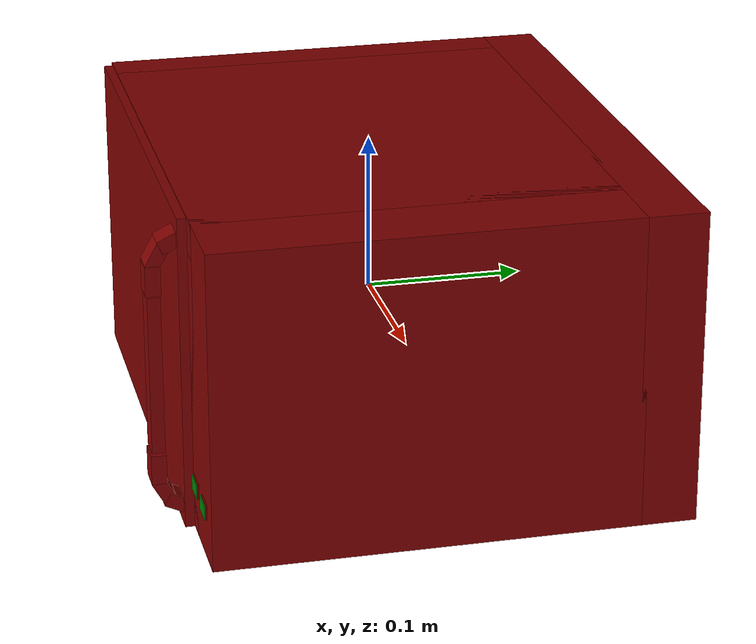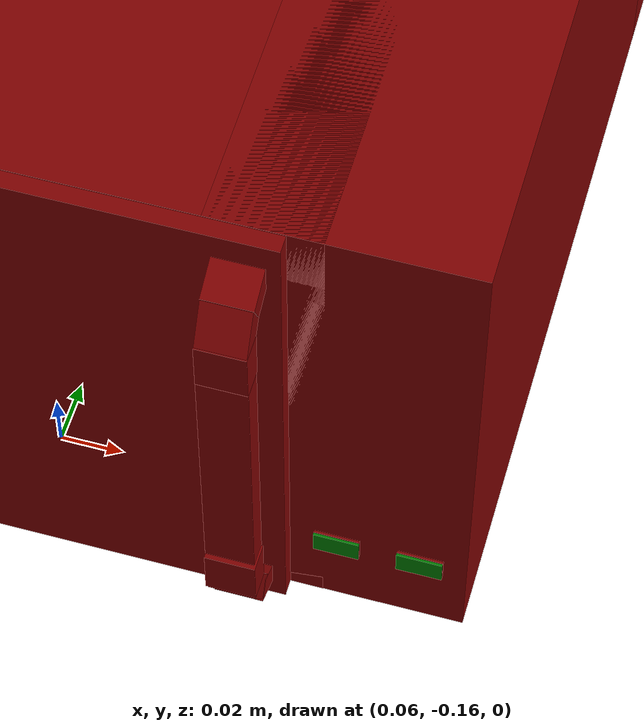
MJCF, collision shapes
<mujoco model="model">
  <compiler angle="radian"/>
  <asset>
    <mesh file="visuals/door.obj" name="door_vis"/>
    <mesh file="visuals/door_Clear.obj" name="door_Clear_vis"/>
    <mesh file="visuals/Body001.obj" name="Body001_vis"/>
    <mesh file="visuals/Button001.obj" name="Button001_vis"/>
    <mesh file="visuals/Button002.obj" name="Button002_vis"/>
    <mesh file="visuals/Disc001.obj" name="Disc001_vis"/>
    <texture file="visuals/T_BC001.png" name="Body001_material" type="2d"/>
    <material name="Body001_material" rgba="1 1 1 1.0" texture="Body001_material" shininess="0.4472135901451111" specular="0.3103448502657381"/>
    <texture file="visuals/T_BC001.png" name="door_material" type="2d"/>
    <material name="door_material" rgba="1 1 1 1.0" texture="door_material" shininess="0.4472135901451111" specular="0.3103448502657381"/>
    <texture file="visuals/T_BC001.png" name="door_Clear_material" type="2d"/>
    <material name="door_Clear_material" rgba="1 1 1 0.8469945192337036" texture="door_Clear_material" shininess="0.4472135901451111" specular="0.3103448502657381"/>
    <texture file="visuals/T_BC001.png" name="Button001_material" type="2d"/>
    <material name="Button001_material" rgba="1 1 1 1.0" texture="Button001_material" shininess="0.4472135901451111" specular="0.3103448502657381"/>
    <texture file="visuals/T_BC001.png" name="Button002_material" type="2d"/>
    <material name="Button002_material" rgba="1 1 1 1.0" texture="Button002_material" shininess="0.4472135901451111" specular="0.3103448502657381"/>
    <texture file="visuals/T_BC001.png" name="Disc001_material" type="2d"/>
    <material name="Disc001_material" rgba="1 1 1 1.0" texture="Disc001_material" shininess="0.4472135901451111" specular="0.3103448502657381"/>
  </asset>
  <default>
    <default class="visual">
      <geom conaffinity="0" contype="0" group="1" type="mesh"/>
    </default>
    <default class="collision">
      <geom group="0" rgba="0.5 0 0 0.5"/>
    </default>
    <default class="spawn">
      <geom group="0" rgba="1 1 1 0.5" contype="0" conaffinity="0"/>
      <site group="0" rgba="1 1 1 0.5"/>
    </default>
    <default class="region">
      <geom group="1" conaffinity="0" contype="0" rgba="0 1 0 0"/>
    </default>
  </default>
  <worldbody>
    <body>
      <body name="object">
        <geom class="collision" type="box" pos="0.14402610063552856 -0.1402142494916916 -0.06152656674385071" size="0.007799377199262381 0.0003798885445576161 0.004545615985989571" quat="1.0 0.0 0.0 0.0" name="start_button" rgba="0.0 0.5 0 0.5"/>
        <geom class="collision" type="box" pos="0.17235764861106873 -0.1402142494916916 -0.06152656674385071" size="0.007799377199262381 0.0003798885445576161 0.004545615985989571" quat="1.0 0.0 0.0 0.0" name="stop_button" rgba="0.0 0.5 0 0.5"/>
        <geom class="collision" type="box" pos="-0.028358621522784233 -0.002941558137536049 -0.06554899364709854" size="0.11209411919116974 0.11209411919116974 0.001577971619553864" quat="1.0 0.0 0.0 0.0" name="tray" rgba="0 1 0 0.5"/>
        <geom mesh="Body001_vis" type="mesh" solimp="0.998 0.998 0.001" solref="0.001 1" density="100" friction="0.95 0.3 0.1" class="visual" material="Body001_material"/>
        <geom class="collision" type="box" pos="1.1641532182693481e-10 0.14321884512901306 0.0033837715163826942" size="0.18792486190795898 0.01878959871828556 0.10010514408349991" quat="1.0 0.0 0.0 0.0"/>
        <geom class="collision" type="box" pos="-0.17479288578033447 -0.005308985710144043 0.0033837715163826942" size="0.013131978921592236 0.13234779238700867 0.10010514408349991" quat="1.0 0.0 0.0 0.0"/>
        <geom class="collision" type="box" pos="0.12051896005868912 -0.005308985710144043 0.0033837715163826942" size="0.018361719325184822 0.13234779238700867 0.10010514408349991" quat="1.0 0.0 0.0 0.0"/>
        <geom class="collision" type="box" pos="-0.012021839618682861 -0.005308985710144043 0.0923464223742485" size="0.15090252459049225 0.13234779238700867 0.011142496950924397" quat="1.0 0.0 0.0 0.0"/>
        <geom class="collision" type="box" pos="-0.012021839618682861 -0.005308985710144043 -0.08553629368543625" size="0.15090252459049225 0.13234779238700867 0.011365150101482868" quat="1.0 0.0 0.0 0.0"/>
        <geom class="collision" type="box" pos="0.14504104852676392 -0.005308985710144043 0.0033837715163826942" size="0.04288380593061447 0.13234779238700867 0.10010514408349991" quat="1.0 0.0 0.0 0.0"/>
        <geom class="collision" type="cylinder" pos="-0.12890711426734924 0.12047963589429855 -0.09626826643943787" size="0.007222891319543123 0.007220652420073748" quat="1.0 0.0 0.0 0.0"/>
        <geom class="collision" type="cylinder" pos="0.1132272481918335 0.12047963589429855 -0.09626826643943787" size="0.007222891319543123 0.007220652420073748" quat="1.0 0.0 0.0 0.0"/>
        <geom class="collision" type="cylinder" pos="0.1132272481918335 -0.10170132666826248 -0.09626826643943787" size="0.007222891319543123 0.007220652420073748" quat="1.0 0.0 0.0 0.0"/>
        <geom class="collision" type="cylinder" pos="-0.12890711426734924 -0.10170132666826248 -0.09626826643943787" size="0.007222891319543123 0.007220652420073748" quat="1.0 0.0 0.0 0.0"/>
        <body name="door">
          <joint axis="0.0 0.0 1.0" pos="-0.1848631501197815 -0.14098967611789703 0.0037279147654771805" limited="true" name="microjoint" range="-1.5707963267948966 0.0" type="hinge" damping="1" frictionloss="1" armature=".01" stiffness="0.05"/>
          <geom mesh="door_vis" type="mesh" solimp="0.998 0.998 0.001" solref="0.001 1" density="100" friction="0.95 0.3 0.1" class="visual" material="door_material"/>
          <geom class="collision" type="box" pos="-0.026151901111006737 -0.14097435772418976 0.003733991179615259" size="0.15377576649188995 0.0029444447718560696 0.09984289854764938" quat="1.0 0.0 0.0 0.0"/>
          <geom class="collision" type="box" pos="0.11438839882612228 -0.1580403447151184 0.003031755331903696" size="0.008323246613144875 0.004077112767845392 0.05045055225491524" quat="1.0 0.0 0.0 0.0" name="door_handle"/>
          <geom class="collision" type="box" pos="0.11481965333223343 -0.14705806970596313 0.08712507039308548" size="0.008289498277008533 0.007139554712921381 0.004450090695172548" quat="7.978625831128738e-07 4.85545058381831e-07 0.21992571651935577 -0.9755166172981262"/>
          <geom class="collision" type="box" pos="0.11458902060985565 -0.15522192418575287 0.07821650803089142" size="0.008125384338200092 0.007795603480190039 0.004228119272738695" quat="9.661798827664825e-08 -6.952240596547199e-07 -0.5028786063194275 0.864357054233551"/>
          <geom class="collision" type="box" pos="0.1145382672548294 -0.15815088152885437 0.06365609914064407" size="0.008236037567257881 0.004725221078842878 0.009356530383229256" quat="1.0 0.0 0.0 0.0"/>
          <geom class="collision" type="box" pos="0.11474815756082535 -0.14705806970596313 -0.0818946585059166" size="0.008360990323126316 0.007139554712921381 0.004450090695172548" quat="0.9755166172981262 -0.21992571651935577 4.951577352585446e-07 7.552212082373444e-07"/>
          <geom class="collision" type="box" pos="0.11471667885780334 -0.15522192418575287 -0.07298609614372253" size="0.008181553333997726 0.007795604411512613 0.004228119272738695" quat="0.864357054233551 -0.5028786063194275 7.70788858517335e-07 -5.2654737459079115e-08"/>
          <geom class="collision" type="box" pos="0.11448720097541809 -0.15815088152885437 -0.05842568352818489" size="0.008593483828008175 0.004725227132439613 0.00935653131455183" quat="1.0 0.0 0.0 0.0"/>
          <body name="door_Clear">
            <geom mesh="door_Clear_vis" type="mesh" solimp="0.998 0.998 0.001" solref="0.001 1" density="100" friction="0.95 0.3 0.1" class="visual" material="door_Clear_material"/>
            <geom class="collision" type="box" pos="-0.028441855683922768 -0.14223386347293854 0.003953819628804922" size="0.10996156185865402 0.0009981656912714243 0.06395179778337479" quat="1.0 0.0 0.0 0.0"/>
          </body>
        </body>
        <body name="Button001">
          <joint axis="0.0 1.0 0.0" pos="0.14405207335948944 -0.14068670570850372 -0.061475902795791626" limited="true" name="Button001_joint" range="0.0 0.001" type="slide" damping="1" frictionloss="1" armature=".01" stiffness="0.05"/>
          <geom mesh="Button001_vis" type="mesh" solimp="0.998 0.998 0.001" solref="0.001 1" density="100" friction="0.95 0.3 0.1" class="visual" material="Button001_material"/>
          <geom class="collision" type="box" pos="0.14402610063552856 -0.13912883400917053 -0.06152656674385071" size="0.007799377199262381 0.0003798885445576161 0.004545615985989571" quat="1.0 0.0 0.0 0.0"/>
        </body>
        <body name="Button002">
          <joint axis="0.0 1.0 0.0" pos="0.17235000431537628 -0.14068670570850372 -0.06150228530168533" limited="true" name="Button002_joint" range="0.0 0.001" type="slide" damping="1" frictionloss="1" armature=".01" stiffness="0.05"/>
          <geom mesh="Button002_vis" type="mesh" solimp="0.998 0.998 0.001" solref="0.001 1" density="100" friction="0.95 0.3 0.1" class="visual" material="Button002_material"/>
          <geom class="collision" type="box" pos="0.17235764861106873 -0.13912883400917053 -0.06152656674385071" size="0.007799377199262381 0.0003798885445576161 0.004545615985989571" quat="1.0 0.0 0.0 0.0"/>
        </body>
        <body name="Disc001">
          <joint axis="0.0 0.0 1.0" pos="-0.02846280112862587 -0.005355356261134148 -0.06684600561857224" limited="false" name="Disc001_joint" range="0 360" type="hinge" damping="1" frictionloss="1" armature=".01" stiffness="0.05"/>
          <geom mesh="Disc001_vis" type="mesh" solimp="0.998 0.998 0.001" solref="0.001 1" density="100" friction="0.95 0.3 0.1" class="visual" material="Disc001_material"/>
          <geom class="collision" type="cylinder" pos="-0.028358621522784233 -0.002941558137536049 -0.07032317668199539" size="0.1152515709400177 0.002370082540437579" quat="1.0 0.0 0.0 0.0"/>
        </body>
        <geom class="region" name="reg_main" type="box" pos="0.0 0.009086370468139648 0.0" size="0.18792486190795898 0.15292206406593323 0.10348892211914062"/>
        <geom class="region" name="reg_int" type="box" pos="-0.029685381799936295 -0.0051015764474868774 0.003505956381559372" size="0.12800201401114464 0.12797117233276367 0.07365445420145988"/>
      </body>
    </body>
  </worldbody>
  <actuator>
    <motor name="microjoint_actuator" joint="microjoint" gear="3"/>
    <motor name="Button001_joint_actuator" joint="Button001_joint" gear="0.1"/>
    <motor name="Button002_joint_actuator" joint="Button002_joint" gear="0.1"/>
    <motor name="Disc001_joint_actuator" joint="Disc001_joint" gear="10"/>
  </actuator>
</mujoco>
